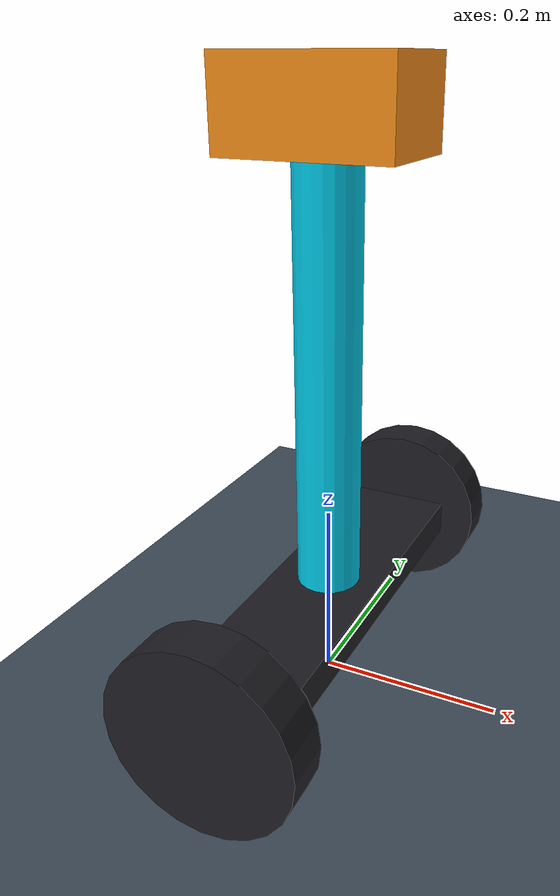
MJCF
<mujoco model="twip">
  <option gravity="0 0 -9.81" timestep="0.001" integrator="implicitfast" cone="elliptic"/>
  <compiler angle="degree" autolimits="true"/>

  <visual>
    <global offwidth="1280" offheight="720"/>
    <headlight ambient="0.5 0.5 0.5" diffuse="0.5 0.5 0.5" specular="0.2 0.2 0.2"/>
    <map shadowclip="3"/>
  </visual>

  <default>
    <joint armature="0.001"/>
    <geom contype="0" conaffinity="0"/>
  </default>

  <asset>
    <texture type="skybox" builtin="gradient" rgb1="0.5 0.6 0.7" rgb2="0.1 0.1 0.15"
             width="512" height="512"/>
    <texture name="grid" type="2d" builtin="checker" rgb1="0.2 0.25 0.3" rgb2="0.3 0.35 0.4"
             width="512" height="512"/>
    <material name="grid" texture="grid" texrepeat="10 10" reflectance="0.1"/>
    <material name="wheel" rgba="0.12 0.12 0.14 1"/>
    <material name="body" rgba="0.0 0.78 0.9 1"/>
    <material name="head" rgba="0.95 0.55 0.1 1"/>
  </asset>

  <worldbody>
    <light pos="0 0 5" dir="0 0 -1" diffuse="0.8 0.8 0.8"/>
    <!-- Ground: contact enabled (wheels roll on it). -->
    <geom name="floor" type="plane" pos="0 0 0" size="50 50 0.1" material="grid"
          contype="1" conaffinity="1" friction="1.0 0.01 0.001"/>

    <body name="base" pos="0 0 0.1">
      <freejoint name="root"/>
      <!-- chassis frame (axle) -->
      <inertial pos="0 0 0" mass="1.0" diaginertia="0.01 0.01 0.01"/>
      <geom type="box" size="0.06 0.22 0.02" pos="0 0 0" material="wheel"/>

      <!-- body mass elevated to l above the axle: this is the inverted pendulum. -->
      <body name="pole" pos="0 0 0">
        <inertial pos="0 0 0.4" mass="5.0" diaginertia="0.2 0.2 0.01"/>
        <geom type="capsule" fromto="0 0 0 0 0 0.5" size="0.035" material="body"/>
        <geom type="box" pos="0 0 0.52" size="0.09 0.06 0.045" material="head"/>
      </body>

      <!-- driven wheels (hinge about the body y-axis), contacting the floor. -->
      <body name="left_wheel" pos="0 0.25 0">
        <joint name="left_hinge" type="hinge" axis="0 1 0" damping="0.05"/>
        <geom type="cylinder" size="0.1 0.025" euler="90 0 0" material="wheel"
              contype="1" conaffinity="1" friction="1.0 0.01 0.001"/>
      </body>
      <body name="right_wheel" pos="0 -0.25 0">
        <joint name="right_hinge" type="hinge" axis="0 1 0" damping="0.05"/>
        <geom type="cylinder" size="0.1 0.025" euler="90 0 0" material="wheel"
              contype="1" conaffinity="1" friction="1.0 0.01 0.001"/>
      </body>
    </body>
  </worldbody>

  <actuator>
    <motor name="tau_L" joint="left_hinge" gear="1" ctrllimited="true" ctrlrange="-200 200"/>
    <motor name="tau_R" joint="right_hinge" gear="1" ctrllimited="true" ctrlrange="-200 200"/>
  </actuator>
</mujoco>
